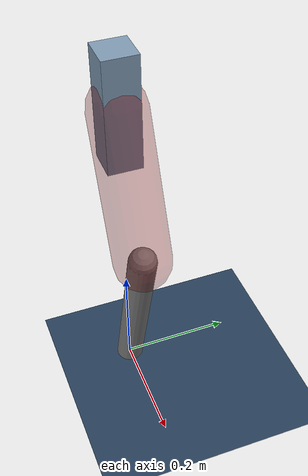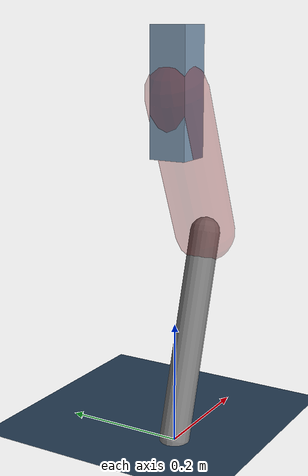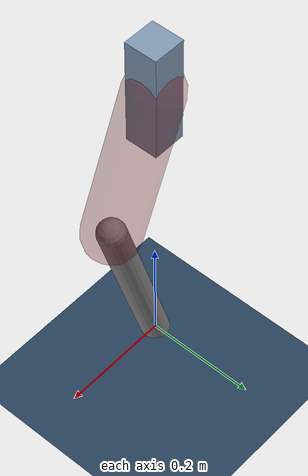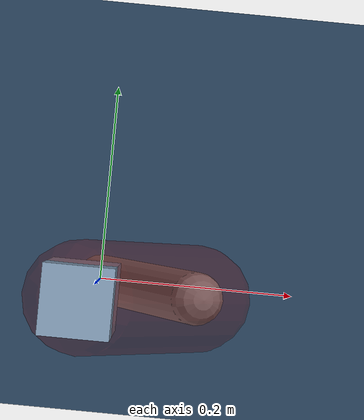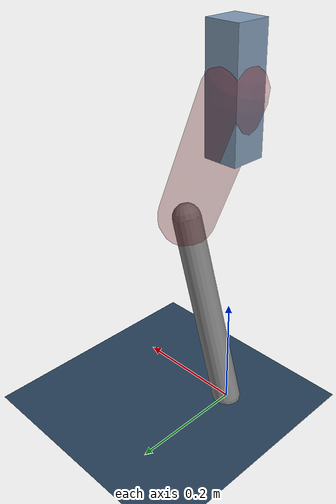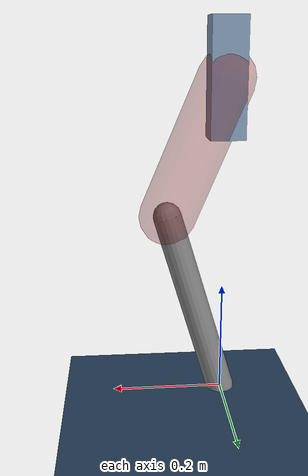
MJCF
<mujoco model="Hopper2D">
	<compiler inertiafromgeom="true" angle="radian" />
	<option timestep="0.001" integrator="implicit" cone="elliptic" solver="Newton" tolerance="1e-10" />

	<default>
		<geom contype="1" conaffinity="1" condim="3" friction="2 0.005 0.0001" solref="0.005 1" />
		<joint limited="true" damping="0.1" />
	</default>

	<asset>
		<texture name="skybox" type="skybox" builtin="gradient" rgb1=".4 .6 .8" rgb2="0 0 0" width="800" height="800" />
		<texture name="grid" type="2d" builtin="checker" rgb1=".1 .2 .3" rgb2=".2 .3 .4" width="300" height="300" mark="edge" markrgb=".2 .3 .4" />
		<material name="ground" texture="grid" texrepeat="1 1" texuniform="true" reflectance="0.1" />
		<material name="leg" rgba="0.5 0.6 0.7 1" />
	</asset>

	<worldbody>

		<geom name="floor" type="plane" size="5 5 0.25" material="ground" />

		<light directional="false" diffuse="0.8 0.8 0.8" specular="0.3 0.3 0.3" pos="0 0 2" dir="0 0 -1" />
		<light mode="targetbodycom" target="base" directional="false" diffuse="0.8 0.8 0.8" specular="0.3 0.3 0.3" pos="0 0 2" dir="0 0 -1" />

		<camera name="fixed" pos="0 -2 1" xyaxes="1 0 0 0 0 1" />
		<camera name="tracking" mode="trackcom" pos="0 -3 1" />

		<body name="root" pos="0 0 0.5693798797858443">
			<joint name="slide_x" type="slide" axis="1 0 0" range="-100 100" />
			<joint name="slide_z" type="slide" axis="0 0 1" range="0 10" />

			<body name="base" pos="0 0 0">
				<geom name="torso" type="box" size="0.03 0.03 0.1" mass="2.927" material="leg" />

				<body name="link1" pos="0 0 0" euler="0 1.169589918291174 0">
					<joint type="hinge" axis="0 -1 0" pos="0 0 0" name="hinge1" limited="true" range="-3.14 3.14" stiffness="0" damping="0.1" />
					<geom name="thigh" type="capsule" fromto="0 0 0 0.2555898593333649 0 0" size="0.05" rgba="0.5 0 0 0.3" mass="0.8709336342667487" />

					<body name="link2" pos="0.2555898593333649 0 0" euler="0 0.6915353570797057 0">
						<joint type="hinge" axis="0 -1 0" pos="0 0 0" name="hinge2" limited="true" range="-3.14 3.14" stiffness="0" damping="0.1" />
						<geom name="shank" type="capsule" fromto="0 0 0 0.3486785579796224 0 0" size="0.025" mass="0.5228428463836979" />

					</body>
				</body>
			</body>
		</body>
	</worldbody>

	<actuator>
		<motor name="torque1" joint="hinge1" ctrlrange="-50.40092228766573 50.40092228766573" ctrllimited="true" gear="1" />
		<motor name="torque2" joint="hinge2" ctrlrange="-87.58429481754987 87.58429481754987" ctrllimited="true" gear="1" />
	</actuator>
</mujoco>
